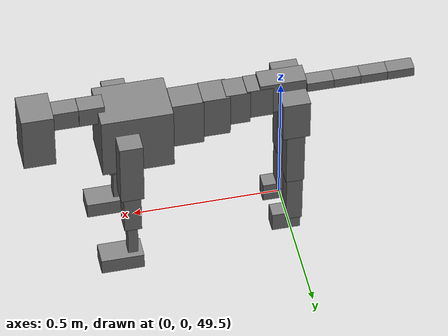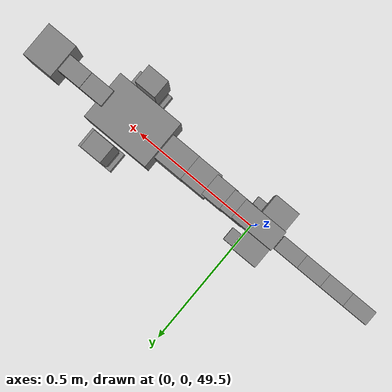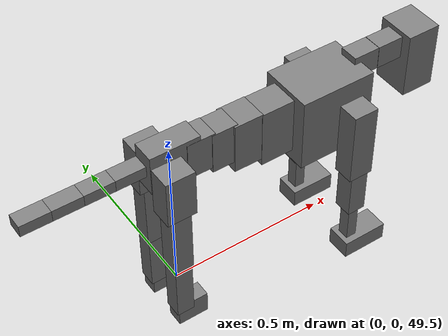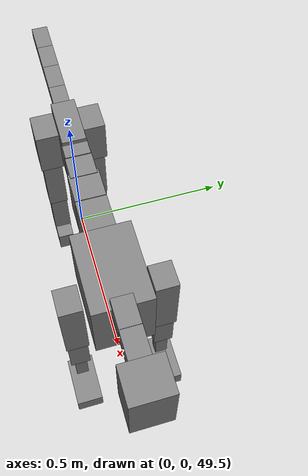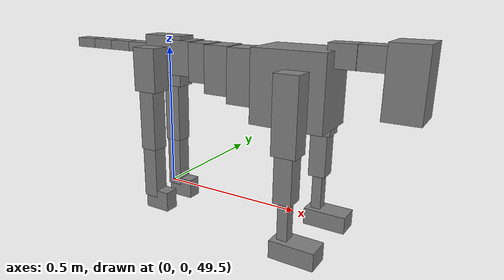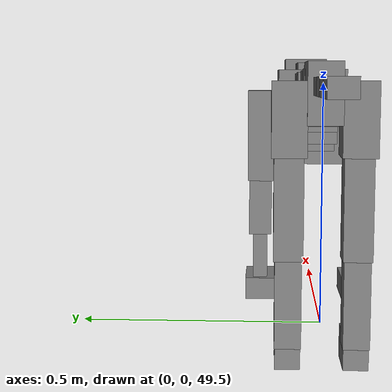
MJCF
<mujoco model="dog">

    <default>
        <joint armature="0.02" stiffness="1" damping="0.2" limited="true"/>
        <geom condim="3" friction="1 0.05 0.05" margin="0.01"/>
        <motor ctrllimited="true" ctrlrange="-1.0 1.0" forcelimited="true" gear="50"/>
    </default>

    <compiler inertiafromgeom="true" angle="radian"/>

    <option timestep="0.016" iterations="50" tolerance="1e-10" solver="Newton" jacobian="dense" cone="pyramidal"/>

    <size nconmax="20000" njmax="60000" nstack="5000000"/>
    <visual>
        <map force="0.1" zfar="30"/>
        <rgba haze="0.15 0.25 0.35 1"/>
        <quality shadowsize="2048"/>
        <global offwidth="800" offheight="800"/>
    </visual>

    <asset>
        <texture type="skybox" builtin="gradient" rgb1="0.3 0.5 0.7" rgb2="0 0 0" width="512" height="512"/>
        <texture name="texplane" type="2d" builtin="checker" rgb1=".2 .3 .4" rgb2=".1 0.15 0.2" width="512" height="512"
                 mark="cross" markrgb=".8 .8 .8"/>
        <texture name="texgeom" type="cube" builtin="flat" mark="cross" width="127" height="1278" rgb1="0.8 0.6 0.4"
                 rgb2="0.8 0.6 0.4" markrgb="1 1 1" random="0.01"/>

        <material name="matplane" reflectance="0.3" texture="texplane" texrepeat="1 1" texuniform="true"/>
        <material name="matgeom" texture="texgeom" texuniform="true" rgba="0.8 0.6 .4 1"/>
    </asset>

    <worldbody>
        <geom name="floor" pos="0 0 0" size="0 0 .25" type="plane" material="matplane" condim="3"/>

        <light directional="false" diffuse=".2 .2 .2" specular="0 0 0" pos="0 0 5" dir="0 0 -1" castshadow="false"/>
        <light mode="targetbodycom" target="torso" directional="false" diffuse=".8 .8 .8" specular="0.3 0.3 0.3"
               pos="0 0 4.0" dir="0 0 -1"/>

        <body name="root" pos="0 0 50">
            <freejoint name="root_1"/>
            <geom type="box" pos="0 0 -0.02" size="0.0774  0.0358  0.063" density="2030"/>

            <body name="spine1" pos="0.054 0 0">
                <joint name="spine1_y" axis="0 1 0" range="0 0.7" limited="true"/>
                <geom type="box" pos="0.02375 0 -0.03" size="0.04375  0.0375  0.05985" density="2030"/>

                <body name="spine2" pos="0.0612 0 0">
                    <joint name="spine2_y" axis="0 1 0" range="-0.15 0.15" limited="true"/>
                    <geom type="box" pos="0.03555  0  -0.04" size="0.04055  0.039  0.06615" density="2030"/>

                    <body name="spine3" pos="0.0730 0 0">
                        <joint name="spine3_y" axis="0 1 0" range="-0.15 0.15" limited="true"/>
                        <geom type="box" pos="0.03555  0  -0.057" size="0.04555  0.0445  0.081" density="2030"/>

                        <body name="spine4" pos="0.0780 0 0">
                            <joint name="spine4_y" axis="0 1 0" range="-0.15 0.15" limited="true"/>
                            <geom type="box" pos="0.05265  0  -0.07" size="0.05265  0.045  0.09135" density="2030"/>

                            <body name="torso" pos="0.1082 0 0">
                                <joint name="torso_y" axis="0 1 0" range="-0.15 0.15" limited="true"/>
                                <geom type="box" pos="0.11925  0  -0.085" size="0.11925  0.085  0.11745"
                                      density="2030"/>

                                <body name="neck1" pos="0.2160  0   0.0180">
                                    <joint name="neck1_y" axis="0 1 0" range="-1.2  -1" limited="true"/>
                                    <geom type="box" pos="0.0423  0  0" size="0.0423  0.03  0.036" density="2325"/>

                                    <body name="neck2" pos="0.0853  0  0">
                                        <joint name="neck2_y" axis="0 1 0" range="0.1  0" limited="true"/>
                                        <geom type="box" pos="0.0423  0  0" size="0.0423  0.03  0.036" density="2325"/>

                                        <body name="head" pos="0.0853  0  0">
                                            <joint name="head_y" axis="0 1 0" range="-0.3  -0.2" limited="true"/>
                                            <geom type="box" pos="0.0531  0  -0.055" size="0.0531  0.06  0.1044"
                                                  density="4030"/>

                                        </body>
                                    </body>
                                </body>

                                <body name="front_shoulder" pos="0.156  0   -0.0480">
                                    <joint name="front_shoulder_y" axis="0 1 0" range="-1 1.5" limited="true"/>
                                    <geom type="box" pos="0 0.13 -0.0928" size="0.0390  0.0333  0.1195" density="1158"/>
                                    <geom type="box" pos="0 -0.13 -0.0928" size="0.0390  0.0333  0.1195"
                                          density="1158"/>

                                    <body name="front_elbow" pos="0  0  -0.1857">
                                        <joint name="front_elbow_y" axis="0 1 0" range="-2 0" limited="true"/>
                                        <geom type="box" pos="0 0.13 -0.0862" size="0.0290  0.0296  0.0862"
                                              density="1081"/>
                                        <geom type="box" pos="0 -0.13 -0.0862" size="0.0290  0.0296  0.0862"
                                              density="1081"/>

                                        <body name="front_wrist" pos="0  0  -0.1724">
                                            <joint name="front_wrist_y" axis="0 1 0" range="-0.2 0" limited="true"/>
                                            <geom type="box" pos="0 0.13 -0.0675" size="0.0169  0.0187  0.0807"
                                                  density="1664"/>
                                            <geom type="box" pos="0 -0.13 -0.0675" size="0.0169  0.0187  0.0807"
                                                  density="1664"/>

                                            <body name="front_finger_end" pos="0  0  -0.1351">
                                                <joint name="front_finger_y" axis="0 1 0" range="-0.4 1"
                                                       limited="true"/>
                                                <geom type="box" pos="0.0394  0.13  -0.0138"
                                                      size="0.0722  0.0394  0.0288" density="1515"/>
                                                <geom type="box" pos="0.0394  -0.13  -0.0138"
                                                      size="0.0722  0.0394  0.0288" density="1515"/>

                                            </body>

                                        </body>
                                    </body>
                                </body>

                            </body>
                        </body>
                    </body>
                </body>
            </body>

            <body name="back_hip" pos="-0.03 0 -0.018">
                <joint name="back_hip_y" axis="0 1 0" range="-1.5 0.3" limited="true"/>
                <geom type="box" pos="0 0.07 -0.0532" size="0.0454  0.0356  0.0760" density="1154"/>
                <geom type="box" pos="0 -0.07 -0.0532" size="0.0454  0.0356  0.0760" density="1154"/>

                <body name="back_knee" pos="0  0  -0.1065">
                    <joint name="back_knee_y" axis="0 1 0" range="0 2.8" limited="true"/>
                    <geom type="box" pos="0 0.07 -0.1090" size="0.0306  0.0301  0.1245" density="1227"/>
                    <geom type="box" pos="0 -0.07 -0.1090" size="0.0306  0.0301  0.1245" density="1227"/>

                    <body name="back_ankle" pos="0  0  -0.2179">
                        <joint name="back_ankle_y" axis="0 1 0" range="-2.2 0" limited="true"/>
                        <geom type="box" pos="0 0.07 -0.0934" size="0.0274  0.0274  0.1047" density="1284"/>
                        <geom type="box" pos="0 -0.07 -0.0934" size="0.0274  0.0274  0.1047" density="1284"/>

                        <body name="back_toe_end" pos="0  0  -0.1868">
                            <joint name="back_toe_y" axis="0 1 0" range="-0.4 1" limited="true"/>
                            <geom type="box" pos="0.0261  0.07  -0.0208" size="0.0479  0.0261  0.0358" density="1515"/>
                            <geom type="box" pos="0.0261  -0.07  -0.0208" size="0.0479  0.0261  0.0358" density="1515"/>

                        </body>
                    </body>
                </body>
            </body>

            <body name="tail1" pos="-0.074 0 -0.006">
                <joint name="tail1_y" axis="0 1 0" range="-0.2 0.2" limited="true"/>
                <geom type="box" pos="-0.0536  0  0" size="0.045  0.025  0.0175" density="1587"/>

                <body name="tail2" pos="-0.09 0 0">
                    <joint name="tail2_y" axis="0 1 0" range="-0.2 0.2" limited="true"/>
                    <geom type="box" pos="-0.0536  0  0" size="0.045  0.025  0.0175" density="1587"/>

                    <body name="tail3" pos="-0.09 0 0">
                        <joint name="tail3_y" axis="0 1 0" range="-0.2 0.2" limited="true"/>
                        <geom type="box" pos="-0.0536  0  0" size="0.045  0.025  0.0175" density="1587"/>

                        <body name="tail4" pos="-0.09 0 0">
                            <joint name="tail4_y" axis="0 1 0" range="-0.2 0.2" limited="true"/>
                            <geom type="box" pos="-0.0536  0  0" size="0.045  0.025  0.0175" density="1587"/>

                        </body>
                    </body>
                </body>
            </body>
        </body>
    </worldbody>

    <actuator>
        <motor joint="spine1_y" forcerange="-150 150     "/>
        <motor joint="spine2_y" forcerange="-150 150     "/>
        <motor joint="spine3_y" forcerange="-150 150     "/>
        <motor joint="spine4_y" forcerange="-150 150     "/>
        <motor joint="torso_y" forcerange="-150 150     "/>
        <motor joint="neck1_y" forcerange="-100 100       "/>
        <motor joint="neck2_y" forcerange="-100 100       "/>
        <motor joint="head_y" forcerange="-150 150       "/>
        <motor joint="front_shoulder_y" forcerange="-152.30 169.72"/>
        <motor joint="front_elbow_y" forcerange="-150.85 164.74"/>
        <motor joint="front_wrist_y" forcerange="-58.84 90.96"/>
        <motor joint="front_finger_y" forcerange="-78.07 92.01"/>
        <motor joint="back_hip_y" forcerange="-306.84 367.44"/>
        <motor joint="back_knee_y" forcerange="-314.03 324.34"/>
        <motor joint="back_angle_y" forcerange="-143.72 194.42"/>
        <motor joint="back_toe_y" forcerange="-69.67 59.53"/>
        <motor joint="tail1_y" forcerange="-50 50     "/>
        <motor joint="tail2_y" forcerange="-50 50     "/>
        <motor joint="tail3_y" forcerange="-50 50     "/>
        <motor joint="tail4_y" forcerange="-50 50     "/>
    </actuator>
</mujoco>
